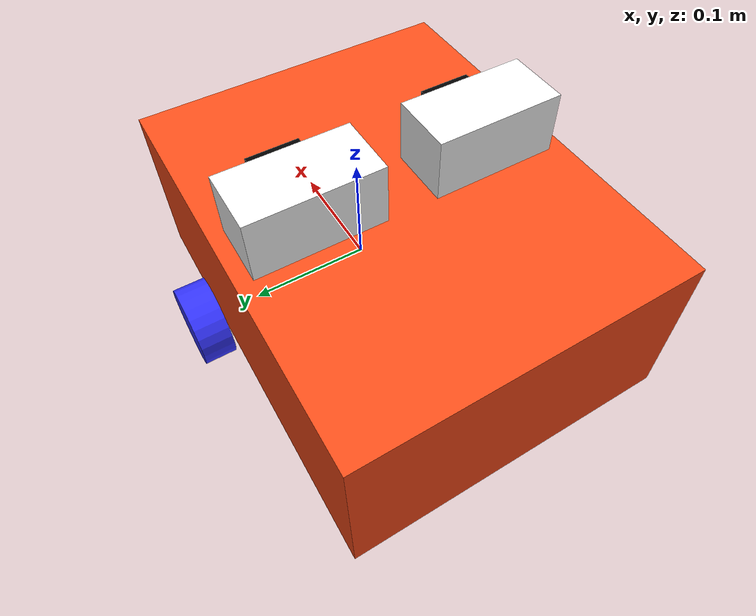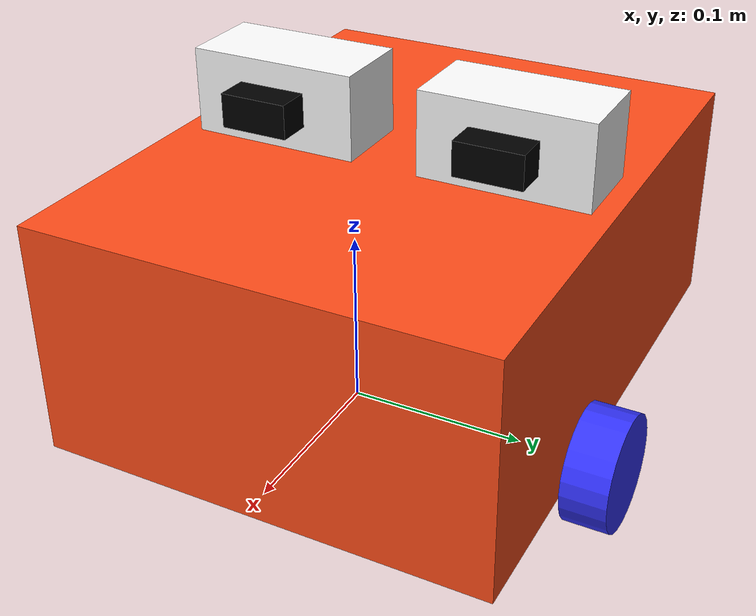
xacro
<?xml version="1.0" ?>
<robot name='robot' xmlns:xacro="http://ros.org/wiki/xacro">

    <xacro:include filename="$(find robot_description)/urdf/gazebo.urdf.xacro" />
    <!--xacro:include filename="$(find robot_description)/urdf/lidar.urdf.xacro" /-->
    <!--xacro:include filename="$(find robot_description)/urdf/depth.urdf.xacro" /-->

    <xacro:property name="chassis_length" value="0.335"/>
    <xacro:property name="chassis_width" value="0.265"/>
    <xacro:property name="chassis_height" value="0.138"/>
    <xacro:property name="wheel_radius" value="0.033"/>
    <xacro:property name="wheel_thickness" value="0.026"/>
    <xacro:property name="wheel_mass" value="0.05"/>
    <xacro:property name="wheel_offset_x" value="0.226"/>
    <xacro:property name="wheel_offset_y" value="0.1485"/>
    <xacro:property name="wheel_offset_z" value="0.01"/>
    <xacro:property name="caster_wheel_radius" value="0.01"/>
    <xacro:property name="caster_wheel_mass" value="0.01"/>
    <xacro:property name="caster_wheel_offset_x" value="0.075"/>
    <xacro:property name="caster_wheel_offset_z" value="${wheel_offset_z - wheel_radius + caster_wheel_radius}"/>
    <xacro:property name="mass" value="1.0"/>
    <xacro:property name="eye_length" value="0.05"/>
    <xacro:property name="eye_width" value="0.1"/>
    <xacro:property name="eye_height" value="0.05"/>
    <xacro:property name="pupil_length" value="0.02"/>
    <xacro:property name="pupil_width" value="0.04"/>
    <xacro:property name="pupil_height" value="0.02"/>
    <xacro:property name="eye_offset_x" value="${chassis_length / 2}"/>
    <xacro:property name="eye_offset_y" value="0.07"/>
    <xacro:property name="eye_offset_z" value="${chassis_height + eye_height / 2}"/>
    <xacro:property name="pupil_offset_x" value="${eye_offset_x + eye_length / 2 + pupil_length / 2}"/>

    <material name="white">
        <color rgba="1 1 1 1" />
    </material>

    <material name="orange">
        <color rgba="1 0.3 0.1 1"/>
    </material>

    <material name="blue">
        <color rgba="0.2 0.2 1 1"/>
    </material>

    <material name="black">
        <color rgba="0 0 0 1"/>
    </material>

    <material name="red">
        <color rgba="1 0 0 1"/>
    </material>

    <material name="eye_white">
        <color rgba="1 1 1 1" />
    </material>

    <material name="eye_black">
        <color rgba="0 0 0 1" />
    </material>

    <link name="base_link">
    </link>

    <link name="base_footprint">
    </link>

    <joint name="base_footprint_joint" type="fixed">
        <parent link="base_link"/>
        <child link="base_footprint"/>
        <origin xyz="0 0 -0.138" rpy="0 0 0"/>
    </joint>

    <joint name="chassis_joint" type="fixed">
        <parent link="base_link"/>
        <child link="chassis"/>
        <origin xyz="${-wheel_offset_x} 0 ${-wheel_offset_z}"/>
    </joint>

    <link name='chassis'>

    <inertial>
        <origin xyz="${chassis_length/2} 0 ${chassis_height/2}" rpy="0 0 0"/>
        <mass value="${mass}" />
        <inertia ixx="${(1/12) * mass * (chassis_width*chassis_width+chassis_height*chassis_height)}" ixy="0.0" ixz="0.0"
                 iyy="${(1/12) * mass * (chassis_length*chassis_length+chassis_height*chassis_height)}" iyz="0.0"
                 izz="${(1/12) * mass * (chassis_length*chassis_length+chassis_width*chassis_width)}" />
    </inertial>
    <visual>
        <origin xyz="${chassis_length/2} 0 ${chassis_height/2}"/>
        <geometry>
            <box size="${chassis_length} ${chassis_width} ${chassis_height}"/>
        </geometry>
        <material name="orange"/>
    </visual>
    <collision>
        <origin xyz="${chassis_length/2} 0 ${chassis_height/2}"/>
        <geometry>
            <box size="${chassis_length} ${chassis_width} ${chassis_height}"/>
        </geometry>
    </collision>
    </link>

    <gazebo reference="chassis">
        <material>Gazebo/Orange</material>
    </gazebo>

    <joint name="left_wheel_joint" type="continuous">
        <parent link="base_link"/>
        <child link="left_wheel"/>
        <origin xyz="0 ${wheel_offset_y} 0" rpy="-${pi/2} 0 0" />
        <axis xyz="0 0 1"/>
    </joint>

    <link name="left_wheel">
        <visual>
            <geometry>
                <cylinder radius="${wheel_radius}" length="${wheel_thickness}"/>
            </geometry>
            <material name="blue"/>
        </visual>
        <collision>
            <geometry>
                <sphere radius="${wheel_radius}"/>
            </geometry>
        </collision>
        <inertial>
            <origin xyz="0 0 0" rpy="0 0 0"/>
            <mass value="${wheel_mass}" />
            <inertia ixx="${(1/12) * wheel_mass * (3*wheel_radius*wheel_radius + wheel_thickness*wheel_thickness)}" ixy="0.0" ixz="0.0"
                     iyy="${(1/12) * wheel_mass * (3*wheel_radius*wheel_radius + wheel_thickness*wheel_thickness)}" iyz="0.0"
                     izz="${(1/2) * wheel_mass * (wheel_radius*wheel_radius)}" />
        </inertial>
    </link>

    <gazebo reference="left_wheel">
        <material>Gazebo/Blue</material>
    </gazebo>

    <joint name="right_wheel_joint" type="continuous">
        <parent link="base_link"/>
        <child link="right_wheel"/>
        <origin xyz="0 ${-wheel_offset_y} 0" rpy="${pi/2} 0 0" />
        <axis xyz="0 0 -1"/>
    </joint>

    <link name="right_wheel">
        <visual>
            <geometry>
                <cylinder radius="${wheel_radius}" length="${wheel_thickness}"/>
            </geometry>
            <material name="blue"/>
        </visual>
        <collision>
            <geometry>
                <sphere radius="${wheel_radius}"/>
            </geometry>
        </collision>
        <inertial>
            <origin xyz="0 0 0" rpy="0 0 0"/>
            <mass value="${wheel_mass}" />
            <inertia ixx="${(1/12) * wheel_mass * (3*wheel_radius*wheel_radius + wheel_thickness*wheel_thickness)}" ixy="0.0" ixz="0.0"
                     iyy="${(1/12) * wheel_mass * (3*wheel_radius*wheel_radius + wheel_thickness*wheel_thickness)}" iyz="0.0"
                     izz="${(1/2) * wheel_mass * (wheel_radius*wheel_radius)}" />
        </inertial>
    </link>

    <gazebo reference="right_wheel">
        <material>Gazebo/Blue</material>
    </gazebo>

    <joint name="caster_wheel_joint" type="fixed">
        <parent link="chassis"/>
        <child link="caster_wheel"/>
        <origin xyz="${caster_wheel_offset_x} 0 ${caster_wheel_offset_z}"/>
    </joint>

    <link name="caster_wheel">
        <visual>
            <geometry>
                <sphere radius="${caster_wheel_radius}"/>
            </geometry>
            <material name="white"/>
        </visual>
        <collision>
            <geometry>
                <sphere radius="${caster_wheel_radius}"/>
            </geometry>
        </collision>
        <inertial>
            <origin xyz="0 0 0" rpy="0 0 0"/>
            <mass value="${caster_wheel_mass}" />
            <inertia ixx="${(2/5) * caster_wheel_mass * (caster_wheel_radius*caster_wheel_radius)}" ixy="0.0" ixz="0.0"
                     iyy="${(2/5) * caster_wheel_mass * (caster_wheel_radius*caster_wheel_radius)}" iyz="0.0"
                     izz="${(2/5) * caster_wheel_mass * (caster_wheel_radius*caster_wheel_radius)}" />
        </inertial>
    </link>

    <!-- Левый глаз -->
    <link name="left_eye">
        <visual>
            <origin xyz="${eye_offset_x} ${eye_offset_y} ${eye_offset_z}" />
            <geometry>
                <box size="${eye_length} ${eye_width} ${eye_height}" />
            </geometry>
            <material name="eye_white" />
        </visual>
        <collision>
            <origin xyz="${eye_offset_x} ${eye_offset_y} ${eye_offset_z}" />
            <geometry>
                <box size="${eye_length} ${eye_width} ${eye_height}" />
            </geometry>
        </collision>
    </link>

    <!-- Левый зрачок -->
    <link name="left_pupil">
        <visual>
            <origin xyz="${pupil_offset_x} ${eye_offset_y} ${eye_offset_z}" />
            <geometry>
                <box size="${pupil_length} ${pupil_width} ${pupil_height}" />
            </geometry>
            <material name="eye_black" />
        </visual>
        <collision>
            <origin xyz="${pupil_offset_x} ${eye_offset_y} ${eye_offset_z}" />
            <geometry>
                <box size="${pupil_length} ${pupil_width} ${pupil_height}" />
            </geometry>
        </collision>
    </link>

    <!-- Правый глаз -->
    <link name="right_eye">
        <visual>
            <origin xyz="${eye_offset_x} ${-eye_offset_y} ${eye_offset_z}" />
            <geometry>
                <box size="${eye_length} ${eye_width} ${eye_height}" />
            </geometry>
            <material name="eye_white" />
        </visual>
        <collision>
            <origin xyz="${eye_offset_x} ${-eye_offset_y} ${eye_offset_z}" />
            <geometry>
                <box size="${eye_length} ${eye_width} ${eye_height}" />
            </geometry>
        </collision>
    </link>

    <!-- Правый зрачок -->
    <link name="right_pupil">
        <visual>
            <origin xyz="${pupil_offset_x} ${-eye_offset_y} ${eye_offset_z}" />
            <geometry>
                <box size="${pupil_length} ${pupil_width} ${pupil_height}" />
            </geometry>
            <material name="eye_black" />
        </visual>
        <collision>
            <origin xyz="${pupil_offset_x} ${-eye_offset_y} ${eye_offset_z}" />
            <geometry>
                <box size="${pupil_length} ${pupil_width} ${pupil_height}" />
            </geometry>
        </collision>
    </link>

    <!-- Крепления глаз -->
    <joint name="left_eye_joint" type="fixed">
        <parent link="chassis" />
        <child link="left_eye" />
        <origin xyz="0 0 0" />
    </joint>

    <joint name="left_pupil_joint" type="fixed">
        <parent link="left_eye" />
        <child link="left_pupil" />
        <origin xyz="0 0 0" />
    </joint>

    <joint name="right_eye_joint" type="fixed">
        <parent link="chassis" />
        <child link="right_eye" />
        <origin xyz="0 0 0" />
    </joint>

    <joint name="right_pupil_joint" type="fixed">
        <parent link="right_eye" />
        <child link="right_pupil" />
        <origin xyz="0 0 0" />
    </joint>

    <gazebo reference="caster_wheel">
        <material>Gazebo/White</material>
        <mu1 value="0.001"/>
        <mu2 value="0.001"/>
    </gazebo>

</robot>
